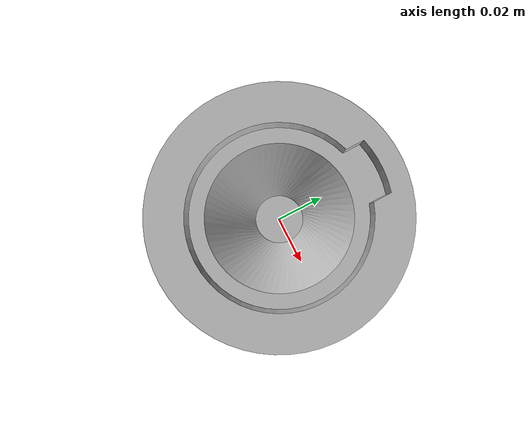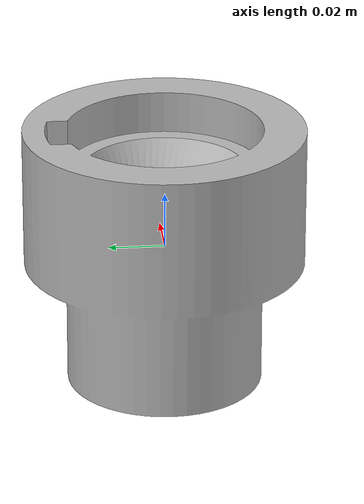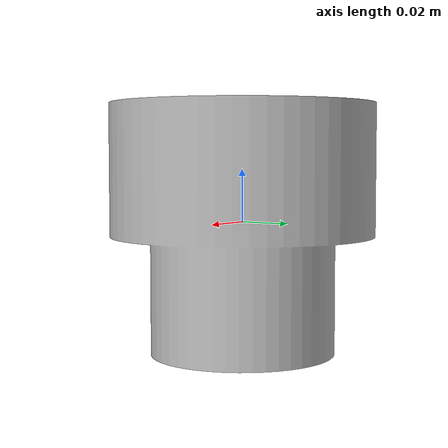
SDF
<?xml version="1.0"?>
<sdf version="1.6">
  <model name="notch_ring">
    <static>false</static>

    <link name="link">
      <gravity>false</gravity>
      <self_collide>false</self_collide>
      <kinematic>false</kinematic>

      <inertial>
        <mass>10.0</mass>
        <inertia>
          <ixx>0.012169</ixx>
          <iyy>0.012239</iyy>
          <izz>0.011722</izz>
          <ixy>0</ixy><ixz>0</ixz><iyz>0</iyz>
        </inertia>
      </inertial>

      <!-- VISUAL: DAE in meters -->
      <visual name="visual">
        <geometry>
          <mesh>
            <uri>model://notch_ring/meshes/notch_ringdae.dae</uri>
            <scale>1 1 1</scale>
          </mesh>
        </geometry>
        <cast_shadows>false</cast_shadows>
      </visual>

      <!-- COLLISION using full mesh -->
        <collision name="collision_full">
          <geometry>
                <mesh>
                 <uri>model://notch_ring/meshes/notch_ringdae.dae</uri>
                 <scale>1 1 1</scale>
                </mesh>
          </geometry>

        <!-- ODE variables, this uses the default, can modify if needed :P -->
          <surface>
             <contact><ode/></contact>
             <friction><ode/></friction>
          </surface>
        </collision>
    </link>
  </model>
</sdf>
